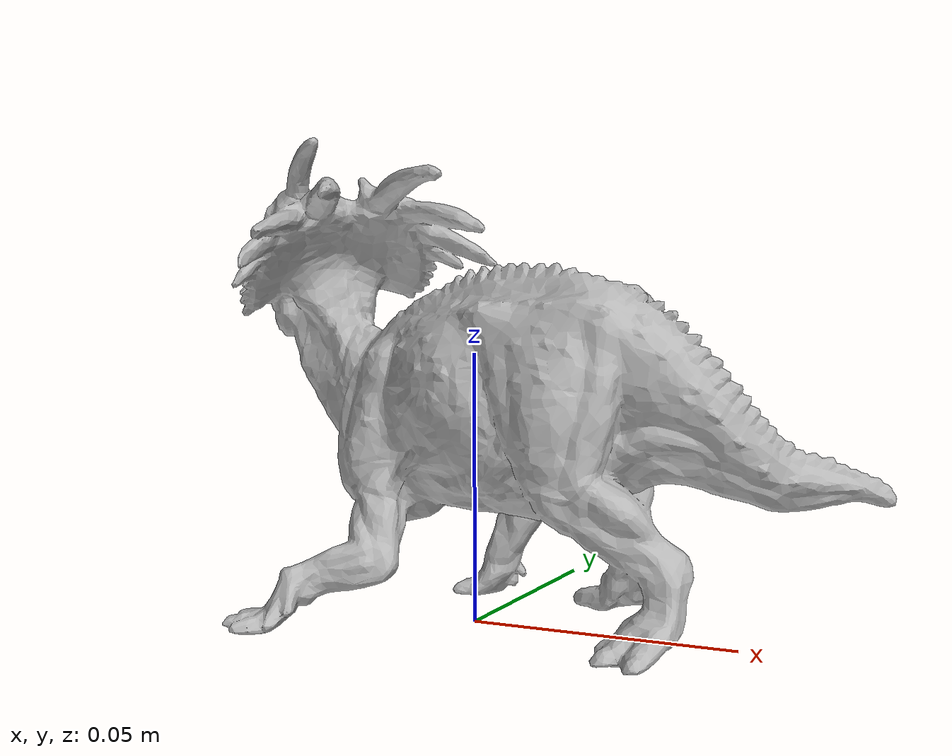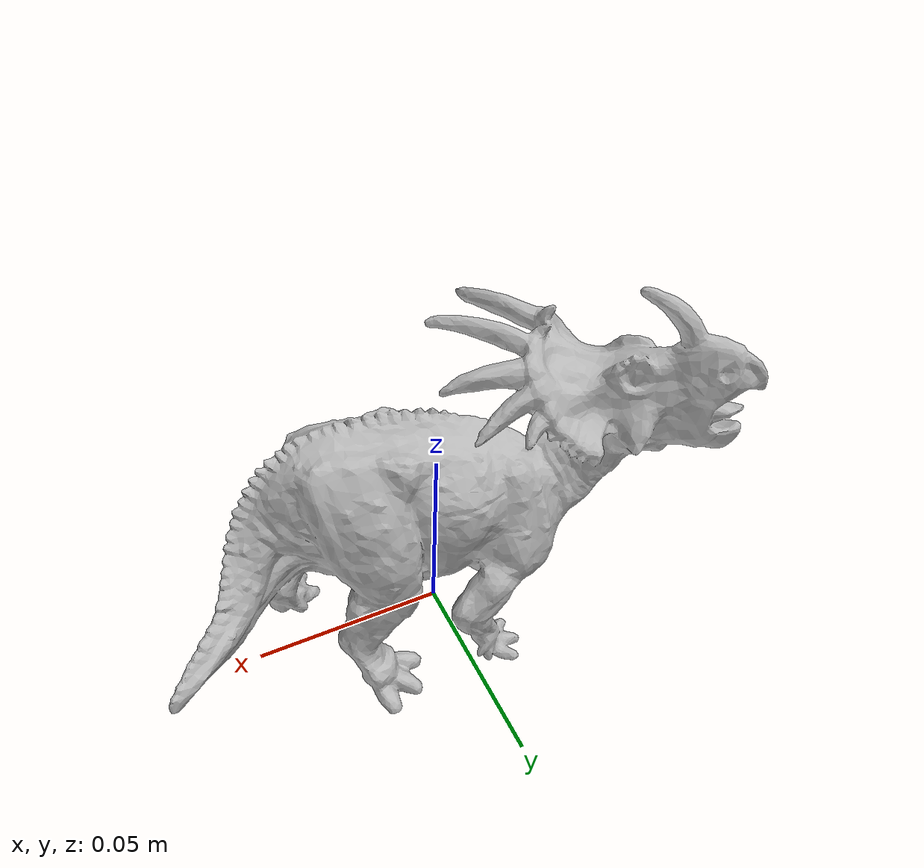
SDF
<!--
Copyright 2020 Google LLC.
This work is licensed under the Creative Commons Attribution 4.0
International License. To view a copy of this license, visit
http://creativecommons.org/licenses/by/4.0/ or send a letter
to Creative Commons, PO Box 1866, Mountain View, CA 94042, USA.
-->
<?xml version="1.0" ?>
<sdf version="1.6">
  <model name="Weisshai_Great_White_Shark">
    <link name="link_0">
      <inertial>
        <pose>0.010357360828107343 -0.0086274991875561063 0.023018258050188933 0 0 0</pose>
        <mass>0.11416179646964589</mass>
        <inertia>
          <ixx>0.00016701031910554392</ixx>
          <ixy>2.7426875913777891e-05</ixy>
          <ixz>-1.1721256319724282e-06</ixz>
          <iyy>4.4020580947114147e-05</iyy>
          <iyz>1.1065720747416149e-07</iyz>
          <izz>0.00018861388590194129</izz>
        </inertia>
      </inertial>
      <visual name="visual">
        <geometry>
          <mesh>
            <uri>meshes/model.obj</uri>
          </mesh>
        </geometry>
      </visual>
      <collision name="collision_0">
        <density>930.0</density> <!-- Natural rubber -->
        <geometry>
          <mesh>
            <uri>meshes/model.obj</uri>
          </mesh>
        </geometry>
      </collision>
    </link>
  </model>
</sdf>
